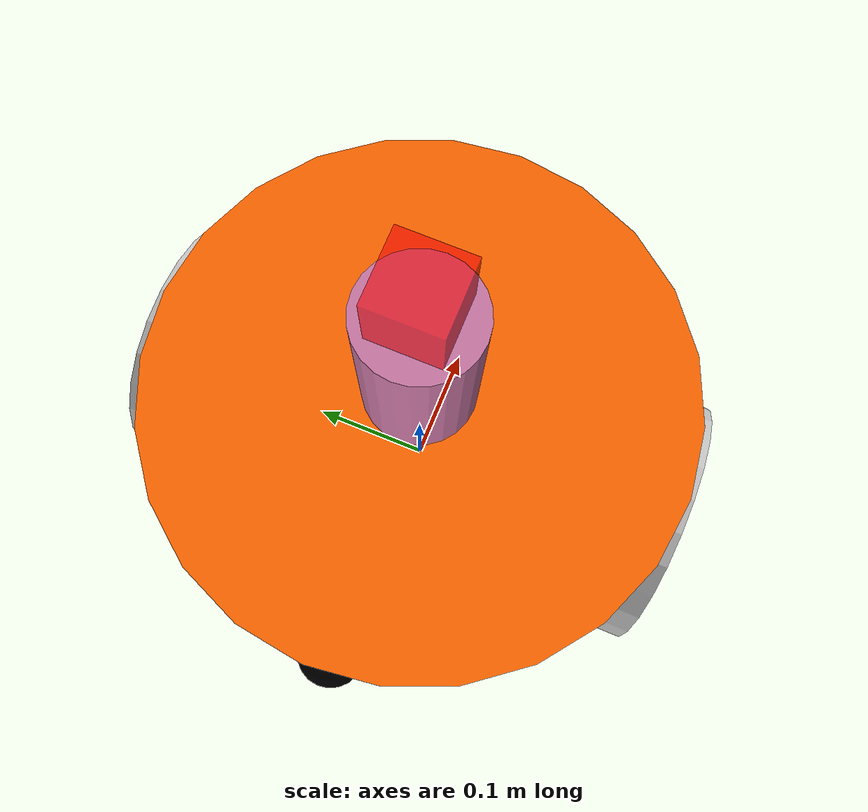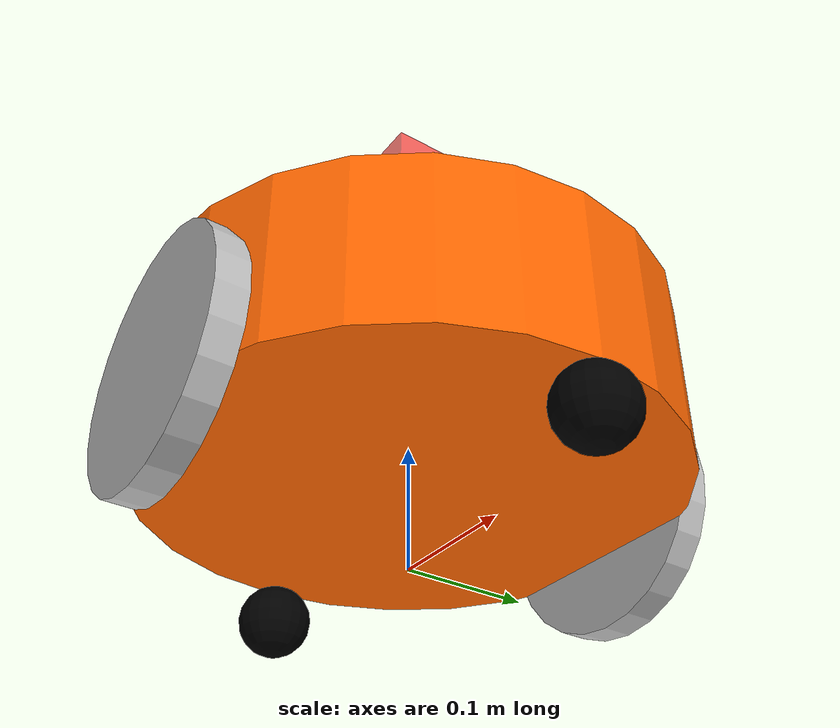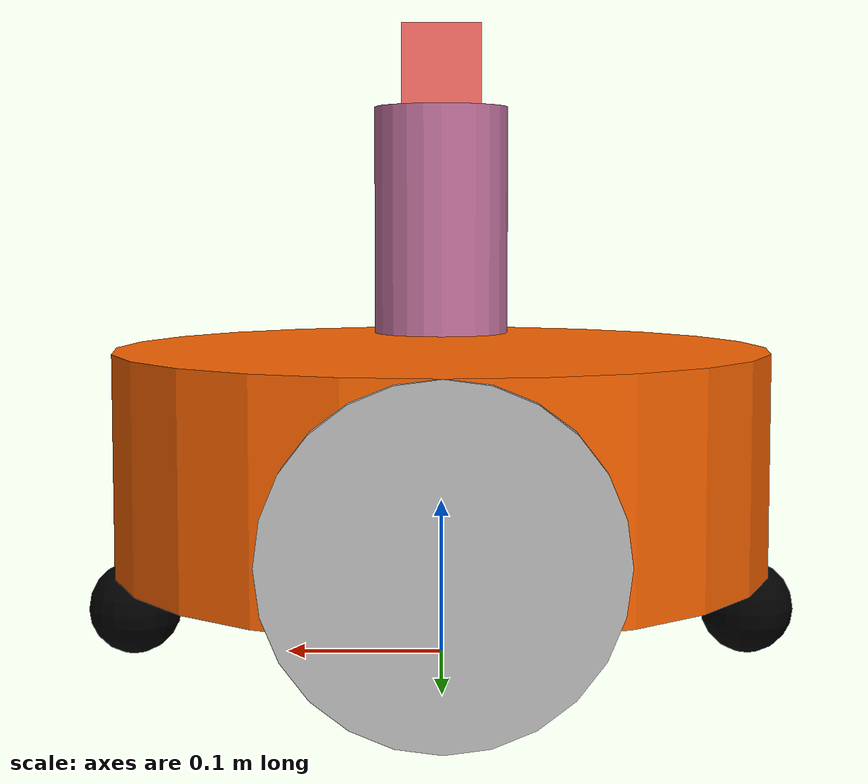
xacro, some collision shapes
<?xml version="1.0"?>
<robot name="arm" xmlns:xacro="http://www.ros.org/wiki/xacro">

    <xacro:include filename="$(find mbot_description)/urdf/xacro/gazebo/mbot_base_gazebo.xacro" />

    <xacro:property name="lidar_offset_x" value="0" />
    <xacro:property name="lidar_offset_y" value="0" />
    <xacro:property name="lidar_offset_z" value="0.080" />

    <xacro:mbot_base_gazebo color_car="Blue"/>

    <!-- lidar VLP-16 -->

    <!-- lidar HDL-32 -->
    <xacro:include filename="$(find velodyne_description)/urdf/HDL-32E.urdf.xacro" />
    <xacro:HDL-32E parent="base_link">
        <origin xyz="${lidar_offset_x} ${lidar_offset_y} ${lidar_offset_z}" rpy="0 0 0" />
    </xacro:HDL-32E>

    <!-- IMU -->
    <xacro:include filename="$(find mbot_description)/sensors/imu.xacro" />
    <xacro:imu sensor_name="imu" parent_link="base_link">
        <origin rpy="0 0 0" xyz="${lidar_offset_x} ${lidar_offset_y} ${lidar_offset_z+0.17}" />
    </xacro:imu>

    <gazebo>
        <plugin name="gazebo_ros_control" filename="libgazebo_ros_control.so">
        </plugin>
    </gazebo>

</robot>

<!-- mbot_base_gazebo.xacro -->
<robot name="mbot" xmlns:xacro="http://www.ros.org/wiki/xacro">

    <!-- PROPERTY LIST -->
    <xacro:property name="M_PI" value="3.1415926"/>
    <xacro:property name="base_mass"   value="40" />
    <xacro:property name="base_radius" value="0.21"/>
    <xacro:property name="base_length" value="0.14"/>

    <xacro:property name="wheel_mass"   value="0.1" />
    <xacro:property name="wheel_radius" value="0.1"/>
    <xacro:property name="wheel_length" value="0.025"/>
    <xacro:property name="wheel_joint_y" value="0.2"/>
    <xacro:property name="wheel_joint_z" value="0.03"/>

    <xacro:property name="caster_mass"    value="0.05" />
    <xacro:property name="caster_radius"  value="0.03"/> <!-- wheel_radius - ( base_length/2 - wheel_joint_z) -->
    <xacro:property name="caster_joint_x" value="0.2"/>

    <!-- Defining the colors used in this robot -->
    <material name="yellow">
        <color rgba="1 0.4 0 1"/>
    </material>
    <material name="black">
        <color rgba="0 0 0 0.95"/>
    </material>
    <material name="gray">
        <color rgba="0.75 0.75 0.75 1"/>
    </material>

    <!-- Macro for inertia matrix -->
    <xacro:macro name="sphere_inertial_matrix" params="m r">
        <inertial>
            <mass value="${m}" />
            <inertia ixx="${2*m*r*r/5}" ixy="0" ixz="0"
                iyy="${2*m*r*r/5}" iyz="0"
                izz="${2*m*r*r/5}" />
        </inertial>
    </xacro:macro>

    <xacro:macro name="cylinder_inertial_matrix" params="m r h">
        <inertial>
            <mass value="${m}" />
            <inertia ixx="${m*(3*r*r+h*h)/12}" ixy = "0" ixz = "0"
                iyy="${m*(3*r*r+h*h)/12}" iyz = "0"
                izz="${m*r*r/2}" />
        </inertial>
    </xacro:macro>

    <xacro:macro name="wheel" params="prefix reflect">
        <joint name="${prefix}_wheel_joint" type="continuous">
            <origin xyz="0 ${reflect*wheel_joint_y} ${-wheel_joint_z}" rpy="0 0 0"/>
            <parent link="base_link"/>
            <child link="${prefix}_wheel_link"/>
            <axis xyz="0 1 0"/>
        </joint>

        <link name="${prefix}_wheel_link">
            <visual>
                <origin xyz="0 0 0" rpy="${M_PI/2} 0 0" />
                <geometry>
                    <cylinder radius="${wheel_radius}" length = "${wheel_length}"/>
                </geometry>
                <material name="gray" />
            </visual>
            <collision>
                <origin xyz="0 0 0" rpy="${M_PI/2} 0 0" />
                <geometry>
                    <cylinder radius="${wheel_radius}" length = "${wheel_length}"/>
                </geometry>
            </collision>
            <xacro:cylinder_inertial_matrix  m="${wheel_mass}" r="${wheel_radius}" h="${wheel_length}" />
        </link>

        <gazebo reference="${prefix}_wheel_link">
            <material>Gazebo/Gray</material>
        </gazebo>

        <!-- Transmission is important to link the joints and the controller -->
        <transmission name="${prefix}_wheel_joint_trans">
            <type>transmission_interface/SimpleTransmission</type>
            <joint name="${prefix}_wheel_joint" >
                <hardwareInterface>hardware_interface/VelocityJointInterface</hardwareInterface>
            </joint>
            <actuator name="${prefix}_wheel_joint_controller">
                <hardwareInterface>hardware_interface/VelocityJointInterface</hardwareInterface>
                <mechanicalReduction>1</mechanicalReduction>
            </actuator>
        </transmission>

    </xacro:macro>

    <!-- Macro for robot caster -->
    <xacro:macro name="caster" params="prefix reflect">
        <joint name="${prefix}_caster_joint" type="continuous">
            <origin xyz="${reflect*caster_joint_x} 0 ${-(base_length/2 + caster_radius)}" rpy="0 0 0"/>
            <parent link="base_link"/>
            <child link="${prefix}_caster_link"/>
            <axis xyz="0 1 0"/>
        </joint>

        <link name="${prefix}_caster_link">
            <visual>
                <origin xyz="0 0 0" rpy="0 0 0"/>
                <geometry>
                    <sphere radius="${caster_radius}" />
                </geometry>
                <material name="black" />
            </visual>
            <collision>
                <origin xyz="0 0 0" rpy="0 0 0"/>
                <geometry>
                    <sphere radius="${caster_radius}" />
                </geometry>
            </collision>
            <xacro:sphere_inertial_matrix  m="${caster_mass}" r="${caster_radius}" />
        </link>

        <gazebo reference="${prefix}_caster_link">
            <material>Gazebo/Black</material>
        </gazebo>
    </xacro:macro>

    <xacro:macro name="mbot_base_gazebo" params="color_car">
        <link name="base_footprint">
            <visual>
                <origin xyz="0 0 0" rpy="0 0 0" />
                <geometry>
                    <box size="0.001 0.001 0.001" />
                </geometry>
            </visual>
        </link>
        <gazebo reference="base_footprint">
            <turnGravityOff>false</turnGravityOff>
        </gazebo>

        <joint name="base_footprint_joint" type="fixed">
            <origin xyz="0 0 ${base_length/2 + caster_radius*2}" rpy="0 0 0" />
            <parent link="base_footprint"/>
            <child link="base_link" />
        </joint>

        <link name="base_link">
            <visual>
                <origin xyz=" 0 0 0" rpy="0 0 0" />
                <geometry>
                    <cylinder length="${base_length}" radius="${base_radius}"/>
                </geometry>
                <material name="yellow" />
            </visual>
            <collision>
                <origin xyz=" 0 0 0" rpy="0 0 0" />
                <geometry>
                    <cylinder length="${base_length}" radius="${base_radius}"/>
                </geometry>
            </collision>
            <xacro:cylinder_inertial_matrix  m="${base_mass}" r="${base_radius}" h="${base_length}" />
        </link>

        <gazebo reference="base_link">
            <material>Gazebo/${color_car}</material>
        </gazebo>

        <xacro:wheel prefix="left"  reflect="-1"/>
        <xacro:wheel prefix="right" reflect="1"/>

        <xacro:caster prefix="front" reflect="-1"/>
        <xacro:caster prefix="back"  reflect="1"/>

        <!-- controller -->
        <gazebo>
            <plugin name="differential_drive_controller"
                    filename="libgazebo_ros_diff_drive.so">
                <rosDebugLevel>Debug</rosDebugLevel>
                <publishWheelTF>true</publishWheelTF>
                <robotNamespace>/</robotNamespace>
                <publishTf>1</publishTf>
                <publishWheelJointState>true</publishWheelJointState>
                <alwaysOn>true</alwaysOn>
                <updateRate>100.0</updateRate>
                <legacyMode>true</legacyMode>
                <leftJoint>left_wheel_joint</leftJoint>
                <rightJoint>right_wheel_joint</rightJoint>
                <wheelSeparation>${wheel_joint_y*2}</wheelSeparation>
                <wheelDiameter>${2*wheel_radius}</wheelDiameter>
                <broadcastTF>1</broadcastTF>
                <wheelTorque>1000000</wheelTorque>
                <wheelAcceleration>900.0</wheelAcceleration>
                <commandTopic>cmd_vel</commandTopic>
                <odometryFrame>odom</odometryFrame>
                <odometryTopic>odom</odometryTopic>
                <robotBaseFrame>base_footprint</robotBaseFrame>
            </plugin>
        </gazebo>
    </xacro:macro>

</robot>

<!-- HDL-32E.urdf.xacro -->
<robot xmlns:xacro="http://www.ros.org/wiki/xacro" name="HDL-32E">
  <xacro:property name="M_PI" value="3.1415926535897931" />
  <xacro:macro name="HDL-32E" params="*origin parent:=base_link name:=velodyne organize_cloud:=false hz:=10 lasers:=32 samples:=2187 collision_range:=0.3 min_range:=0.3 max_range:=130.0 noise:=0.00 min_angle:=-${M_PI} max_angle:=${M_PI} gpu:=true">

    <joint name="${name}_base_mount_joint" type="fixed">
      <xacro:insert_block name="origin" />
      <parent link="${parent}"/>
      <child link="${name}_base_link"/>
    </joint>

    <link name="${name}_base_link">
      <inertial>
        <mass value="1.0"/>
        <origin xyz="0 0 0.07212"/>
        <inertia ixx="${(1.0 * (3.0*0.04267*0.04267 + 0.14424*0.14424)) / 12.0}" ixy="0" ixz="0"
          iyy="${(1.0 * (3.0*0.04267*0.04267 + 0.14424*0.14424)) / 12.0}" iyz="0"
          izz="${0.5 * 1.0 * (0.04267*0.04267)}"/>
      </inertial>
      <visual>
        <geometry>
          <mesh filename="package://velodyne_description/meshes/HDL32E_base.dae" />
        </geometry>
      </visual>
      <collision>
        <origin rpy="0 0 0" xyz="0 0 0.07212"/>
        <geometry>
          <cylinder radius="0.04267" length="0.14424"/>
        </geometry>
      </collision>
    </link>

    <joint name="${name}_base_scan_joint" type="fixed" >
      <origin xyz="0 0 0.09081" rpy="0 0 0" />
      <parent link="${name}_base_link" />
      <child link="${name}"/>
    </joint>

    <link name="${name}">
      <inertial>
        <mass value="0.01"/>
        <origin xyz="0 0 0"/>
        <inertia ixx="1e-7" ixy="0" ixz="0" iyy="1e-7" iyz="0" izz="1e-7"/>
      </inertial>
      <visual>
        <origin xyz="0 0 -0.09081" rpy="0 0 0" />
        <geometry>
          <mesh filename="package://velodyne_description/meshes/HDL32E_scan.dae" />
        </geometry>
      </visual>
      <collision>
        <geometry>
          <sphere radius="0"/>
        </geometry>
      </collision>
    </link>

    <!-- Gazebo requires the velodyne_gazebo_plugins package -->
    <gazebo reference="${name}">
      <xacro:if value="${gpu}">
        <sensor type="gpu_ray" name="${name}-HDL32E">
          <pose>0 0 0 0 0 0</pose>
          <visualize>false</visualize>
          <update_rate>${hz}</update_rate>
          <ray>
            <scan>
              <horizontal>
                <samples>${samples}</samples>
                <resolution>1</resolution>
                <min_angle>${min_angle}</min_angle>
                <max_angle>${max_angle}</max_angle>
              </horizontal>
              <vertical>
                <samples>${lasers}</samples>
                <resolution>1</resolution>
                <min_angle>-${30.67*M_PI/180.0}</min_angle>
                <max_angle> ${10.67*M_PI/180.0}</max_angle>
              </vertical>
            </scan>
            <range>
              <min>${collision_range}</min>
              <max>${max_range+1}</max>
              <resolution>0.001</resolution>
            </range>
            <noise>
              <type>gaussian</type>
              <mean>0.0</mean>
              <stddev>0.0</stddev>
            </noise>
          </ray>
          <plugin name="gazebo_ros_laser_controller" filename="libgazebo_ros_velodyne_gpu_laser.so">
            <topicName>velodyne_points</topicName>
            <frameName>${name}</frameName>
            <organize_cloud>${organize_cloud}</organize_cloud>
            <min_range>${min_range}</min_range>
            <max_range>${max_range}</max_range>
            <gaussianNoise>${noise}</gaussianNoise>
          </plugin>
        </sensor>
      </xacro:if>
      <xacro:unless value="${gpu}">
        <sensor type="ray" name="${name}-HDL32E">
          <pose>0 0 0 0 0 0</pose>
          <visualize>false</visualize>
          <update_rate>${hz}</update_rate>
          <ray>
            <scan>
              <horizontal>
                <samples>${samples}</samples>
                <resolution>1</resolution>
                <min_angle>${min_angle}</min_angle>
                <max_angle>${max_angle}</max_angle>
              </horizontal>
              <vertical>
                <samples>${lasers}</samples>
                <resolution>1</resolution>
                <min_angle>-${30.67*M_PI/180.0}</min_angle>
                <max_angle> ${10.67*M_PI/180.0}</max_angle>
              </vertical>
            </scan>
            <range>
              <min>${collision_range}</min>
              <max>${max_range+1}</max>
              <resolution>0.001</resolution>
            </range>
            <noise>
              <type>gaussian</type>
              <mean>0.0</mean>
              <stddev>0.0</stddev>
            </noise>
          </ray>
          <plugin name="gazebo_ros_laser_controller" filename="libgazebo_ros_velodyne_laser.so">
            <topicName>velodyne_points</topicName>
            <frameName>${name}</frameName>
            <organize_cloud>${organize_cloud}</organize_cloud>
            <min_range>${min_range}</min_range>
            <max_range>${max_range}</max_range>
            <gaussianNoise>${noise}</gaussianNoise>
          </plugin>
        </sensor>
      </xacro:unless>
    </gazebo>

  </xacro:macro>
</robot>

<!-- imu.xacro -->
<robot xmlns:xacro="http://wiki.ros.org/xacro">

    <xacro:macro name="imu" params="sensor_name parent_link *origin">

        <xacro:property name="imu_size" value="0.05" />
        <xacro:property name="imu_m" value="0.01" /> <!-- imu质量 -->
        <xacro:macro name="Box_inertial_matrix" params="m l w h">
            <inertial>
                <mass value="${m}" />
                <inertia ixx="${m*(h*h + l*l)/12}" ixy="0" ixz="0"
                    iyy="${m*(w*w + l*l)/12}" iyz="0"
                    izz="${m*(w*w + h*h)/12}" />
            </inertial>
        </xacro:macro>

        <!-- imu -->
        <joint name="imutobase" type="fixed">
            <xacro:insert_block name="origin" />
            <parent link="${parent_link}" />
            <child link="imu_base" />
        </joint>

        <link name="imu_base">
            <visual>
                <origin rpy="0 0 0" xyz="0 0 0" />
                <geometry>
                    <box size="${imu_size} ${imu_size} ${imu_size}" />
                </geometry>
                <material name="black">
                    <color rgba="1.0 0.0 0.0 0.6" />
                </material>
            </visual>
            <collision>
                <geometry>
                    <box size="${imu_size} ${imu_size} ${imu_size}" />
                </geometry>
                <origin xyz="0.0 0.0 0" rpy="0.0 0.0 0.0" />
            </collision>
            <xacro:Box_inertial_matrix m="${imu_m}" l="${imu_size}" w="${imu_size}" h="${imu_size}" />
        </link>

        <!-- 被引用的link -->
        <gazebo reference="imu_base">
            <material>Gazebo/Green</material>
            <gravity>true</gravity>
            <sensor name="imu_sensor" type="imu">
                <always_on>true</always_on>
                <update_rate>1000</update_rate>
                <visualize>true</visualize>
                <topic>__default_topic__</topic>
                <plugin filename="libgazebo_ros_imu_sensor.so" name="imu_plugin">
                    <topicName>imu/data</topicName>
                    <bodyName>imu_base</bodyName>
                    <updateRateHZ>1000.0</updateRateHZ>
                    <gaussianNoise>0.0</gaussianNoise>
                    <xyzOffset>0 0 0</xyzOffset>
                    <rpyOffset>0 0 0</rpyOffset>
                    <frameName>imu_base</frameName>
                </plugin>
                <pose>0 0 0 0 0 0</pose>
            </sensor>
        </gazebo>

    </xacro:macro>
</robot>
